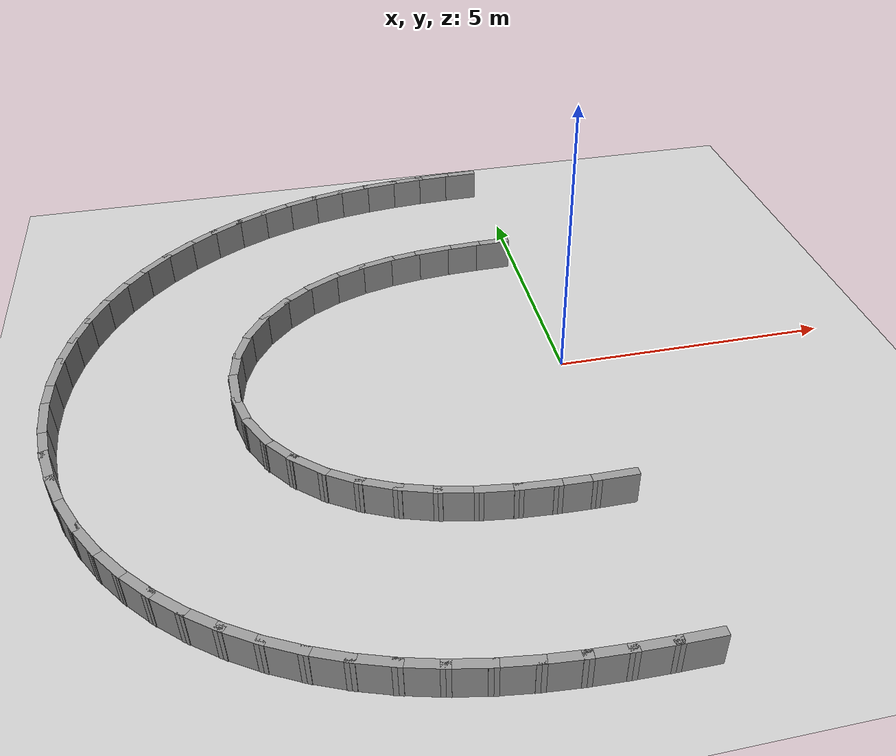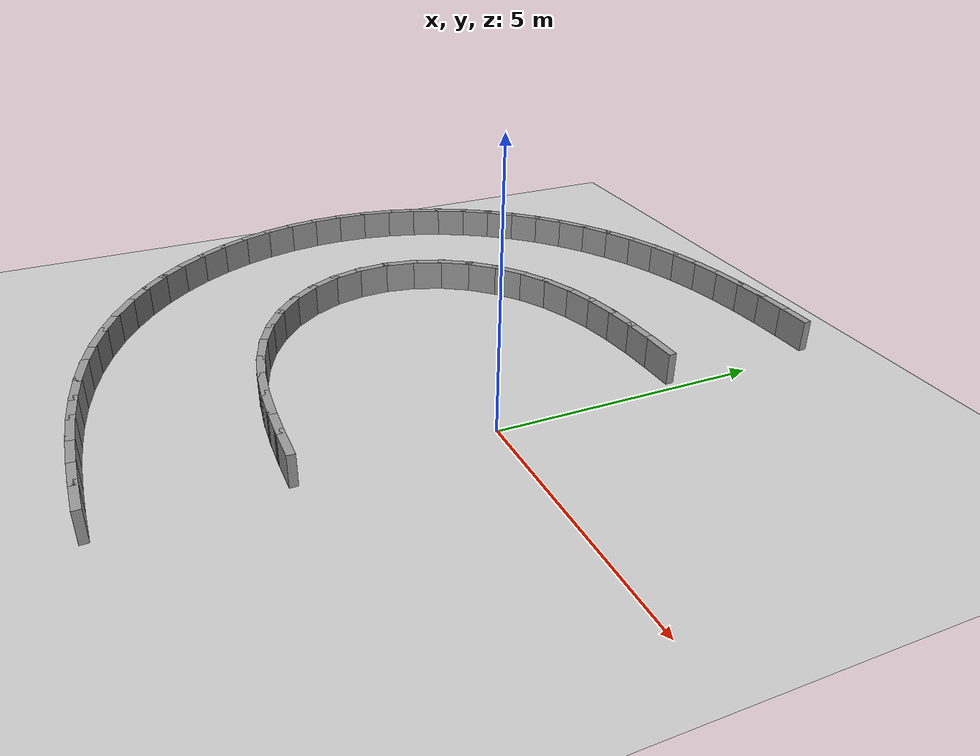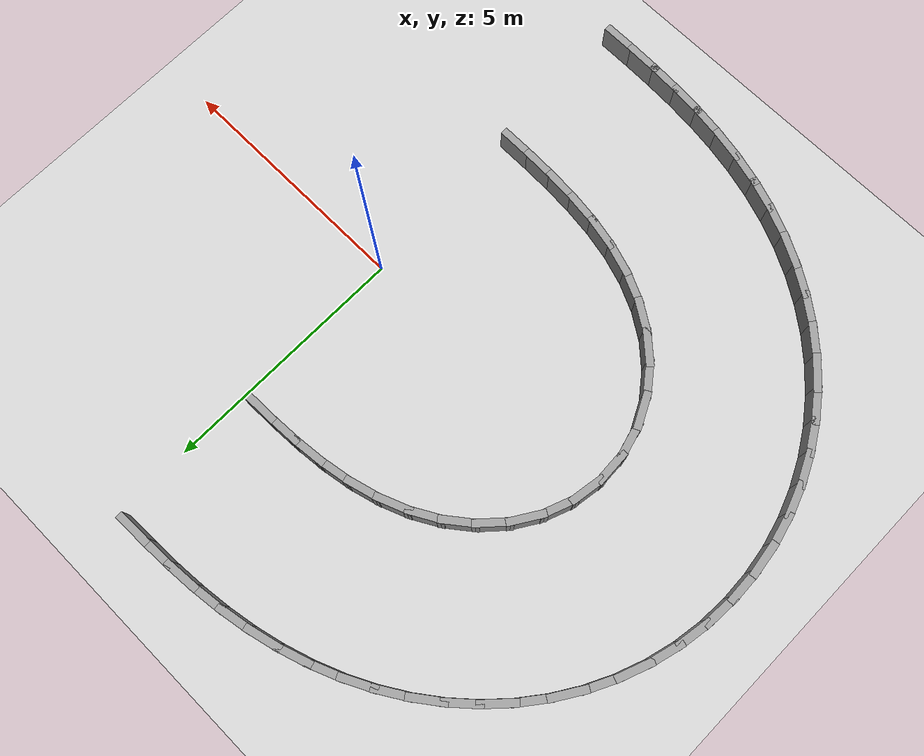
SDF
<sdf version="1.7">
 <world name="default">
  <model name="ground_plane">
   <static>1</static>
   <link name="link">
    <collision name="collision">
     <geometry><plane><normal>0 0 1</normal><size>100 100</size></plane></geometry>
     <surface><friction><ode><mu>100</mu><mu2>50</mu2></ode></friction></surface>
    </collision>
    <visual name="visual">
     <cast_shadows>0</cast_shadows>
     <geometry><plane><normal>0 0 1</normal><size>100 100</size></plane></geometry>
     <material>
      <script><uri>file://media/materials/scripts/gazebo.material</uri><name>Gazebo/Grey</name></script>
     </material>
    </visual>
   </link>
  </model>
  <model name="rand_lobed_07">
   <link name="Wall_13">
    <collision name="Wall_13_Collision">
     <geometry><box><size>0.7500 0.1500 0.6000</size></box></geometry>
     <pose>0 0 0.3000 0 -0 0</pose>
    </collision>
    <visual name="Wall_13_Visual">
     <pose>0 0 0.3000 0 -0 0</pose>
     <geometry><box><size>0.7500 0.1500 0.6000</size></box></geometry>
     <material>
      <script><uri>file://media/materials/scripts/gazebo.material</uri><name>Gazebo/Grey</name></script>
      <ambient>1 1 1 1</ambient>
     </material>
    </visual>
    <pose>-0.5262 3.4776 0 0 -0 -3.12235</pose>
   </link>
   <link name="Wall_14">
    <collision name="Wall_14_Collision">
     <geometry><box><size>0.7500 0.1500 0.6000</size></box></geometry>
     <pose>0 0 0.3000 0 -0 0</pose>
    </collision>
    <visual name="Wall_14_Visual">
     <pose>0 0 0.3000 0 -0 0</pose>
     <geometry><box><size>0.7500 0.1500 0.6000</size></box></geometry>
     <material>
      <script><uri>file://media/materials/scripts/gazebo.material</uri><name>Gazebo/Grey</name></script>
      <ambient>1 1 1 1</ambient>
     </material>
    </visual>
    <pose>-1.1257 3.4567 0 0 -0 -3.09110</pose>
   </link>
   <link name="Wall_15">
    <collision name="Wall_15_Collision">
     <geometry><box><size>0.7499 0.1500 0.6000</size></box></geometry>
     <pose>0 0 0.3000 0 -0 0</pose>
    </collision>
    <visual name="Wall_15_Visual">
     <pose>0 0 0.3000 0 -0 0</pose>
     <geometry><box><size>0.7499 0.1500 0.6000</size></box></geometry>
     <material>
      <script><uri>file://media/materials/scripts/gazebo.material</uri><name>Gazebo/Grey</name></script>
      <ambient>1 1 1 1</ambient>
     </material>
    </visual>
    <pose>-1.7238 3.4117 0 0 -0 -3.04209</pose>
   </link>
   <link name="Wall_16">
    <collision name="Wall_16_Collision">
     <geometry><box><size>0.7498 0.1500 0.6000</size></box></geometry>
     <pose>0 0 0.3000 0 -0 0</pose>
    </collision>
    <visual name="Wall_16_Visual">
     <pose>0 0 0.3000 0 -0 0</pose>
     <geometry><box><size>0.7498 0.1500 0.6000</size></box></geometry>
     <material>
      <script><uri>file://media/materials/scripts/gazebo.material</uri><name>Gazebo/Grey</name></script>
      <ambient>1 1 1 1</ambient>
     </material>
    </visual>
    <pose>-2.3178 3.3311 0 0 -0 -2.97131</pose>
   </link>
   <link name="Wall_17">
    <collision name="Wall_17_Collision">
     <geometry><box><size>0.7497 0.1500 0.6000</size></box></geometry>
     <pose>0 0 0.3000 0 -0 0</pose>
    </collision>
    <visual name="Wall_17_Visual">
     <pose>0 0 0.3000 0 -0 0</pose>
     <geometry><box><size>0.7497 0.1500 0.6000</size></box></geometry>
     <material>
      <script><uri>file://media/materials/scripts/gazebo.material</uri><name>Gazebo/Grey</name></script>
      <ambient>1 1 1 1</ambient>
     </material>
    </visual>
    <pose>-2.9029 3.2023 0 0 -0 -2.87835</pose>
   </link>
   <link name="Wall_18">
    <collision name="Wall_18_Collision">
     <geometry><box><size>0.7496 0.1500 0.6000</size></box></geometry>
     <pose>0 0 0.3000 0 -0 0</pose>
    </collision>
    <visual name="Wall_18_Visual">
     <pose>0 0 0.3000 0 -0 0</pose>
     <geometry><box><size>0.7496 0.1500 0.6000</size></box></geometry>
     <material>
      <script><uri>file://media/materials/scripts/gazebo.material</uri><name>Gazebo/Grey</name></script>
      <ambient>1 1 1 1</ambient>
     </material>
    </visual>
    <pose>-3.4712 3.0140 0 0 -0 -2.76487</pose>
   </link>
   <link name="Wall_19">
    <collision name="Wall_19_Collision">
     <geometry><box><size>0.7495 0.1500 0.6000</size></box></geometry>
     <pose>0 0 0.3000 0 -0 0</pose>
    </collision>
    <visual name="Wall_19_Visual">
     <pose>0 0 0.3000 0 -0 0</pose>
     <geometry><box><size>0.7495 0.1500 0.6000</size></box></geometry>
     <material>
      <script><uri>file://media/materials/scripts/gazebo.material</uri><name>Gazebo/Grey</name></script>
      <ambient>1 1 1 1</ambient>
     </material>
    </visual>
    <pose>-4.0118 2.7576 0 0 -0 -2.63266</pose>
   </link>
   <link name="Wall_20">
    <collision name="Wall_20_Collision">
     <geometry><box><size>0.7494 0.1500 0.6000</size></box></geometry>
     <pose>0 0 0.3000 0 -0 0</pose>
    </collision>
    <visual name="Wall_20_Visual">
     <pose>0 0 0.3000 0 -0 0</pose>
     <geometry><box><size>0.7494 0.1500 0.6000</size></box></geometry>
     <material>
      <script><uri>file://media/materials/scripts/gazebo.material</uri><name>Gazebo/Grey</name></script>
      <ambient>1 1 1 1</ambient>
     </material>
    </visual>
    <pose>-4.5106 2.4281 0 0 -0 -2.48297</pose>
   </link>
   <link name="Wall_21">
    <collision name="Wall_21_Collision">
     <geometry><box><size>0.7492 0.1500 0.6000</size></box></geometry>
     <pose>0 0 0.3000 0 -0 0</pose>
    </collision>
    <visual name="Wall_21_Visual">
     <pose>0 0 0.3000 0 -0 0</pose>
     <geometry><box><size>0.7492 0.1500 0.6000</size></box></geometry>
     <material>
      <script><uri>file://media/materials/scripts/gazebo.material</uri><name>Gazebo/Grey</name></script>
      <ambient>1 1 1 1</ambient>
     </material>
    </visual>
    <pose>-4.9509 2.0246 0 0 -0 -2.31660</pose>
   </link>
   <link name="Wall_22">
    <collision name="Wall_22_Collision">
     <geometry><box><size>0.7491 0.1500 0.6000</size></box></geometry>
     <pose>0 0 0.3000 0 -0 0</pose>
    </collision>
    <visual name="Wall_22_Visual">
     <pose>0 0 0.3000 0 -0 0</pose>
     <geometry><box><size>0.7491 0.1500 0.6000</size></box></geometry>
     <material>
      <script><uri>file://media/materials/scripts/gazebo.material</uri><name>Gazebo/Grey</name></script>
      <ambient>1 1 1 1</ambient>
     </material>
    </visual>
    <pose>-5.3141 1.5513 0 0 -0 -2.13413</pose>
   </link>
   <link name="Wall_23">
    <collision name="Wall_23_Collision">
     <geometry><box><size>0.7490 0.1500 0.6000</size></box></geometry>
     <pose>0 0 0.3000 0 -0 0</pose>
    </collision>
    <visual name="Wall_23_Visual">
     <pose>0 0 0.3000 0 -0 0</pose>
     <geometry><box><size>0.7490 0.1500 0.6000</size></box></geometry>
     <material>
      <script><uri>file://media/materials/scripts/gazebo.material</uri><name>Gazebo/Grey</name></script>
      <ambient>1 1 1 1</ambient>
     </material>
    </visual>
    <pose>-5.5814 1.0184 0 0 -0 -1.93731</pose>
   </link>
   <link name="Wall_24">
    <collision name="Wall_24_Collision">
     <geometry><box><size>0.7489 0.1500 0.6000</size></box></geometry>
     <pose>0 0 0.3000 0 -0 0</pose>
    </collision>
    <visual name="Wall_24_Visual">
     <pose>0 0 0.3000 0 -0 0</pose>
     <geometry><box><size>0.7489 0.1500 0.6000</size></box></geometry>
     <material>
      <script><uri>file://media/materials/scripts/gazebo.material</uri><name>Gazebo/Grey</name></script>
      <ambient>1 1 1 1</ambient>
     </material>
    </visual>
    <pose>-5.7361 0.4432 0 0 -0 -1.72955</pose>
   </link>
   <link name="Wall_25">
    <collision name="Wall_25_Collision">
     <geometry><box><size>0.7489 0.1500 0.6000</size></box></geometry>
     <pose>0 0 0.3000 0 -0 0</pose>
    </collision>
    <visual name="Wall_25_Visual">
     <pose>0 0 0.3000 0 -0 0</pose>
     <geometry><box><size>0.7489 0.1500 0.6000</size></box></geometry>
     <material>
      <script><uri>file://media/materials/scripts/gazebo.material</uri><name>Gazebo/Grey</name></script>
      <ambient>1 1 1 1</ambient>
     </material>
    </visual>
    <pose>-5.7672 -0.1515 0 0 -0 -1.51658</pose>
   </link>
   <link name="Wall_26">
    <collision name="Wall_26_Collision">
     <geometry><box><size>0.7489 0.1500 0.6000</size></box></geometry>
     <pose>0 0 0.3000 0 -0 0</pose>
    </collision>
    <visual name="Wall_26_Visual">
     <pose>0 0 0.3000 0 -0 0</pose>
     <geometry><box><size>0.7489 0.1500 0.6000</size></box></geometry>
     <material>
      <script><uri>file://media/materials/scripts/gazebo.material</uri><name>Gazebo/Grey</name></script>
      <ambient>1 1 1 1</ambient>
     </material>
    </visual>
    <pose>-5.6724 -0.7395 0 0 -0 -1.30540</pose>
   </link>
   <link name="Wall_27">
    <collision name="Wall_27_Collision">
     <geometry><box><size>0.7490 0.1500 0.6000</size></box></geometry>
     <pose>0 0 0.3000 0 -0 0</pose>
    </collision>
    <visual name="Wall_27_Visual">
     <pose>0 0 0.3000 0 -0 0</pose>
     <geometry><box><size>0.7490 0.1500 0.6000</size></box></geometry>
     <material>
      <script><uri>file://media/materials/scripts/gazebo.material</uri><name>Gazebo/Grey</name></script>
      <ambient>1 1 1 1</ambient>
     </material>
    </visual>
    <pose>-5.4587 -1.2957 0 0 -0 -1.10263</pose>
   </link>
   <link name="Wall_28">
    <collision name="Wall_28_Collision">
     <geometry><box><size>0.7492 0.1500 0.6000</size></box></geometry>
     <pose>0 0 0.3000 0 -0 0</pose>
    </collision>
    <visual name="Wall_28_Visual">
     <pose>0 0 0.3000 0 -0 0</pose>
     <geometry><box><size>0.7492 0.1500 0.6000</size></box></geometry>
     <material>
      <script><uri>file://media/materials/scripts/gazebo.material</uri><name>Gazebo/Grey</name></script>
      <ambient>1 1 1 1</ambient>
     </material>
    </visual>
    <pose>-5.1404 -1.8001 0 0 -0 -0.91282</pose>
   </link>
   <link name="Wall_29">
    <collision name="Wall_29_Collision">
     <geometry><box><size>0.7493 0.1500 0.6000</size></box></geometry>
     <pose>0 0 0.3000 0 -0 0</pose>
    </collision>
    <visual name="Wall_29_Visual">
     <pose>0 0 0.3000 0 -0 0</pose>
     <geometry><box><size>0.7493 0.1500 0.6000</size></box></geometry>
     <material>
      <script><uri>file://media/materials/scripts/gazebo.material</uri><name>Gazebo/Grey</name></script>
      <ambient>1 1 1 1</ambient>
     </material>
    </visual>
    <pose>-4.7356 -2.2388 0 0 -0 -0.73840</pose>
   </link>
   <link name="Wall_30">
    <collision name="Wall_30_Collision">
     <geometry><box><size>0.7494 0.1500 0.6000</size></box></geometry>
     <pose>0 0 0.3000 0 -0 0</pose>
    </collision>
    <visual name="Wall_30_Visual">
     <pose>0 0 0.3000 0 -0 0</pose>
     <geometry><box><size>0.7494 0.1500 0.6000</size></box></geometry>
     <material>
      <script><uri>file://media/materials/scripts/gazebo.material</uri><name>Gazebo/Grey</name></script>
      <ambient>1 1 1 1</ambient>
     </material>
    </visual>
    <pose>-4.2633 -2.6049 0 0 -0 -0.58046</pose>
   </link>
   <link name="Wall_31">
    <collision name="Wall_31_Collision">
     <geometry><box><size>0.7496 0.1500 0.6000</size></box></geometry>
     <pose>0 0 0.3000 0 -0 0</pose>
    </collision>
    <visual name="Wall_31_Visual">
     <pose>0 0 0.3000 0 -0 0</pose>
     <geometry><box><size>0.7496 0.1500 0.6000</size></box></geometry>
     <material>
      <script><uri>file://media/materials/scripts/gazebo.material</uri><name>Gazebo/Grey</name></script>
      <ambient>1 1 1 1</ambient>
     </material>
    </visual>
    <pose>-3.7414 -2.8968 0 0 -0 -0.43950</pose>
   </link>
   <link name="Wall_32">
    <collision name="Wall_32_Collision">
     <geometry><box><size>0.7497 0.1500 0.6000</size></box></geometry>
     <pose>0 0 0.3000 0 -0 0</pose>
    </collision>
    <visual name="Wall_32_Visual">
     <pose>0 0 0.3000 0 -0 0</pose>
     <geometry><box><size>0.7497 0.1500 0.6000</size></box></geometry>
     <material>
      <script><uri>file://media/materials/scripts/gazebo.material</uri><name>Gazebo/Grey</name></script>
      <ambient>1 1 1 1</ambient>
     </material>
    </visual>
    <pose>-3.1852 -3.1177 0 0 -0 -0.31660</pose>
   </link>
   <link name="Wall_33">
    <collision name="Wall_33_Collision">
     <geometry><box><size>0.7498 0.1500 0.6000</size></box></geometry>
     <pose>0 0 0.3000 0 -0 0</pose>
    </collision>
    <visual name="Wall_33_Visual">
     <pose>0 0 0.3000 0 -0 0</pose>
     <geometry><box><size>0.7498 0.1500 0.6000</size></box></geometry>
     <material>
      <script><uri>file://media/materials/scripts/gazebo.material</uri><name>Gazebo/Grey</name></script>
      <ambient>1 1 1 1</ambient>
     </material>
    </visual>
    <pose>-2.6071 -3.2745 0 0 -0 -0.21333</pose>
   </link>
   <link name="Wall_34">
    <collision name="Wall_34_Collision">
     <geometry><box><size>0.7499 0.1500 0.6000</size></box></geometry>
     <pose>0 0 0.3000 0 -0 0</pose>
    </collision>
    <visual name="Wall_34_Visual">
     <pose>0 0 0.3000 0 -0 0</pose>
     <geometry><box><size>0.7499 0.1500 0.6000</size></box></geometry>
     <material>
      <script><uri>file://media/materials/scripts/gazebo.material</uri><name>Gazebo/Grey</name></script>
      <ambient>1 1 1 1</ambient>
     </material>
    </visual>
    <pose>-2.0167 -3.3773 0 0 -0 -0.13149</pose>
   </link>
   <link name="Wall_35">
    <collision name="Wall_35_Collision">
     <geometry><box><size>0.7499 0.1500 0.6000</size></box></geometry>
     <pose>0 0 0.3000 0 -0 0</pose>
    </collision>
    <visual name="Wall_35_Visual">
     <pose>0 0 0.3000 0 -0 0</pose>
     <geometry><box><size>0.7499 0.1500 0.6000</size></box></geometry>
     <material>
      <script><uri>file://media/materials/scripts/gazebo.material</uri><name>Gazebo/Grey</name></script>
      <ambient>1 1 1 1</ambient>
     </material>
    </visual>
    <pose>-1.4202 -3.4383 0 0 -0 -0.07203</pose>
   </link>
   <link name="Wall_36">
    <collision name="Wall_36_Collision">
     <geometry><box><size>0.7500 0.1500 0.6000</size></box></geometry>
     <pose>0 0 0.3000 0 -0 0</pose>
    </collision>
    <visual name="Wall_36_Visual">
     <pose>0 0 0.3000 0 -0 0</pose>
     <geometry><box><size>0.7500 0.1500 0.6000</size></box></geometry>
     <material>
      <script><uri>file://media/materials/scripts/gazebo.material</uri><name>Gazebo/Grey</name></script>
      <ambient>1 1 1 1</ambient>
     </material>
    </visual>
    <pose>-0.8211 -3.4697 0 0 -0 -0.03282</pose>
   </link>
   <link name="Wall_37">
    <collision name="Wall_37_Collision">
     <geometry><box><size>0.7500 0.1500 0.6000</size></box></geometry>
     <pose>0 0 0.3000 0 -0 0</pose>
    </collision>
    <visual name="Wall_37_Visual">
     <pose>0 0 0.3000 0 -0 0</pose>
     <geometry><box><size>0.7500 0.1500 0.6000</size></box></geometry>
     <material>
      <script><uri>file://media/materials/scripts/gazebo.material</uri><name>Gazebo/Grey</name></script>
      <ambient>1 1 1 1</ambient>
     </material>
    </visual>
    <pose>-0.2213 -3.4818 0 0 -0 -0.00765</pose>
   </link>
   <link name="Wall_71">
    <collision name="Wall_71_Collision">
     <geometry><box><size>0.7500 0.1500 0.6000</size></box></geometry>
     <pose>0 0 0.3000 0 -0 0</pose>
    </collision>
    <visual name="Wall_71_Visual">
     <pose>0 0 0.3000 0 -0 0</pose>
     <geometry><box><size>0.7500 0.1500 0.6000</size></box></geometry>
     <material>
      <script><uri>file://media/materials/scripts/gazebo.material</uri><name>Gazebo/Grey</name></script>
      <ambient>1 1 1 1</ambient>
     </material>
    </visual>
    <pose>-0.5635 6.5097 0 0 -0 -3.12319</pose>
   </link>
   <link name="Wall_72">
    <collision name="Wall_72_Collision">
     <geometry><box><size>0.7500 0.1500 0.6000</size></box></geometry>
     <pose>0 0 0.3000 0 -0 0</pose>
    </collision>
    <visual name="Wall_72_Visual">
     <pose>0 0 0.3000 0 -0 0</pose>
     <geometry><box><size>0.7500 0.1500 0.6000</size></box></geometry>
     <material>
      <script><uri>file://media/materials/scripts/gazebo.material</uri><name>Gazebo/Grey</name></script>
      <ambient>1 1 1 1</ambient>
     </material>
    </visual>
    <pose>-1.1631 6.4909 0 0 -0 -3.09737</pose>
   </link>
   <link name="Wall_73">
    <collision name="Wall_73_Collision">
     <geometry><box><size>0.7500 0.1500 0.6000</size></box></geometry>
     <pose>0 0 0.3000 0 -0 0</pose>
    </collision>
    <visual name="Wall_73_Visual">
     <pose>0 0 0.3000 0 -0 0</pose>
     <geometry><box><size>0.7500 0.1500 0.6000</size></box></geometry>
     <material>
      <script><uri>file://media/materials/scripts/gazebo.material</uri><name>Gazebo/Grey</name></script>
      <ambient>1 1 1 1</ambient>
     </material>
    </visual>
    <pose>-1.7618 6.4537 0 0 -0 -3.06155</pose>
   </link>
   <link name="Wall_74">
    <collision name="Wall_74_Collision">
     <geometry><box><size>0.7499 0.1500 0.6000</size></box></geometry>
     <pose>0 0 0.3000 0 -0 0</pose>
    </collision>
    <visual name="Wall_74_Visual">
     <pose>0 0 0.3000 0 -0 0</pose>
     <geometry><box><size>0.7499 0.1500 0.6000</size></box></geometry>
     <material>
      <script><uri>file://media/materials/scripts/gazebo.material</uri><name>Gazebo/Grey</name></script>
      <ambient>1 1 1 1</ambient>
     </material>
    </visual>
    <pose>-2.3584 6.3919 0 0 -0 -3.01525</pose>
   </link>
   <link name="Wall_75">
    <collision name="Wall_75_Collision">
     <geometry><box><size>0.7499 0.1500 0.6000</size></box></geometry>
     <pose>0 0 0.3000 0 -0 0</pose>
    </collision>
    <visual name="Wall_75_Visual">
     <pose>0 0 0.3000 0 -0 0</pose>
     <geometry><box><size>0.7499 0.1500 0.6000</size></box></geometry>
     <material>
      <script><uri>file://media/materials/scripts/gazebo.material</uri><name>Gazebo/Grey</name></script>
      <ambient>1 1 1 1</ambient>
     </material>
    </visual>
    <pose>-2.9510 6.2998 0 0 -0 -2.95978</pose>
   </link>
   <link name="Wall_76">
    <collision name="Wall_76_Collision">
     <geometry><box><size>0.7499 0.1500 0.6000</size></box></geometry>
     <pose>0 0 0.3000 0 -0 0</pose>
    </collision>
    <visual name="Wall_76_Visual">
     <pose>0 0 0.3000 0 -0 0</pose>
     <geometry><box><size>0.7499 0.1500 0.6000</size></box></geometry>
     <material>
      <script><uri>file://media/materials/scripts/gazebo.material</uri><name>Gazebo/Grey</name></script>
      <ambient>1 1 1 1</ambient>
     </material>
    </visual>
    <pose>-3.5370 6.1729 0 0 -0 -2.89670</pose>
   </link>
   <link name="Wall_77">
    <collision name="Wall_77_Collision">
     <geometry><box><size>0.7499 0.1500 0.6000</size></box></geometry>
     <pose>0 0 0.3000 0 -0 0</pose>
    </collision>
    <visual name="Wall_77_Visual">
     <pose>0 0 0.3000 0 -0 0</pose>
     <geometry><box><size>0.7499 0.1500 0.6000</size></box></geometry>
     <material>
      <script><uri>file://media/materials/scripts/gazebo.material</uri><name>Gazebo/Grey</name></script>
      <ambient>1 1 1 1</ambient>
     </material>
    </visual>
    <pose>-4.1132 6.0075 0 0 -0 -2.82742</pose>
   </link>
   <link name="Wall_78">
    <collision name="Wall_78_Collision">
     <geometry><box><size>0.7499 0.1500 0.6000</size></box></geometry>
     <pose>0 0 0.3000 0 -0 0</pose>
    </collision>
    <visual name="Wall_78_Visual">
     <pose>0 0 0.3000 0 -0 0</pose>
     <geometry><box><size>0.7499 0.1500 0.6000</size></box></geometry>
     <material>
      <script><uri>file://media/materials/scripts/gazebo.material</uri><name>Gazebo/Grey</name></script>
      <ambient>1 1 1 1</ambient>
     </material>
    </visual>
    <pose>-4.6761 5.8012 0 0 -0 -2.75311</pose>
   </link>
   <link name="Wall_79">
    <collision name="Wall_79_Collision">
     <geometry><box><size>0.7498 0.1500 0.6000</size></box></geometry>
     <pose>0 0 0.3000 0 -0 0</pose>
    </collision>
    <visual name="Wall_79_Visual">
     <pose>0 0 0.3000 0 -0 0</pose>
     <geometry><box><size>0.7498 0.1500 0.6000</size></box></geometry>
     <material>
      <script><uri>file://media/materials/scripts/gazebo.material</uri><name>Gazebo/Grey</name></script>
      <ambient>1 1 1 1</ambient>
     </material>
    </visual>
    <pose>-5.2214 5.5525 0 0 -0 -2.67445</pose>
   </link>
   <link name="Wall_80">
    <collision name="Wall_80_Collision">
     <geometry><box><size>0.7498 0.1500 0.6000</size></box></geometry>
     <pose>0 0 0.3000 0 -0 0</pose>
    </collision>
    <visual name="Wall_80_Visual">
     <pose>0 0 0.3000 0 -0 0</pose>
     <geometry><box><size>0.7498 0.1500 0.6000</size></box></geometry>
     <material>
      <script><uri>file://media/materials/scripts/gazebo.material</uri><name>Gazebo/Grey</name></script>
      <ambient>1 1 1 1</ambient>
     </material>
    </visual>
    <pose>-5.7450 5.2608 0 0 -0 -2.59213</pose>
   </link>
   <link name="Wall_81">
    <collision name="Wall_81_Collision">
     <geometry><box><size>0.7498 0.1500 0.6000</size></box></geometry>
     <pose>0 0 0.3000 0 -0 0</pose>
    </collision>
    <visual name="Wall_81_Visual">
     <pose>0 0 0.3000 0 -0 0</pose>
     <geometry><box><size>0.7498 0.1500 0.6000</size></box></geometry>
     <material>
      <script><uri>file://media/materials/scripts/gazebo.material</uri><name>Gazebo/Grey</name></script>
      <ambient>1 1 1 1</ambient>
     </material>
    </visual>
    <pose>-6.2422 4.9263 0 0 -0 -2.50653</pose>
   </link>
   <link name="Wall_82">
    <collision name="Wall_82_Collision">
     <geometry><box><size>0.7498 0.1500 0.6000</size></box></geometry>
     <pose>0 0 0.3000 0 -0 0</pose>
    </collision>
    <visual name="Wall_82_Visual">
     <pose>0 0 0.3000 0 -0 0</pose>
     <geometry><box><size>0.7498 0.1500 0.6000</size></box></geometry>
     <material>
      <script><uri>file://media/materials/scripts/gazebo.material</uri><name>Gazebo/Grey</name></script>
      <ambient>1 1 1 1</ambient>
     </material>
    </visual>
    <pose>-6.7084 4.5498 0 0 -0 -2.41798</pose>
   </link>
   <link name="Wall_83">
    <collision name="Wall_83_Collision">
     <geometry><box><size>0.7498 0.1500 0.6000</size></box></geometry>
     <pose>0 0 0.3000 0 -0 0</pose>
    </collision>
    <visual name="Wall_83_Visual">
     <pose>0 0 0.3000 0 -0 0</pose>
     <geometry><box><size>0.7498 0.1500 0.6000</size></box></geometry>
     <material>
      <script><uri>file://media/materials/scripts/gazebo.material</uri><name>Gazebo/Grey</name></script>
      <ambient>1 1 1 1</ambient>
     </material>
    </visual>
    <pose>-7.1388 4.1330 0 0 -0 -2.32675</pose>
   </link>
   <link name="Wall_84">
    <collision name="Wall_84_Collision">
     <geometry><box><size>0.7498 0.1500 0.6000</size></box></geometry>
     <pose>0 0 0.3000 0 -0 0</pose>
    </collision>
    <visual name="Wall_84_Visual">
     <pose>0 0 0.3000 0 -0 0</pose>
     <geometry><box><size>0.7498 0.1500 0.6000</size></box></geometry>
     <material>
      <script><uri>file://media/materials/scripts/gazebo.material</uri><name>Gazebo/Grey</name></script>
      <ambient>1 1 1 1</ambient>
     </material>
    </visual>
    <pose>-7.5290 3.6783 0 0 -0 -2.23302</pose>
   </link>
   <link name="Wall_85">
    <collision name="Wall_85_Collision">
     <geometry><box><size>0.7498 0.1500 0.6000</size></box></geometry>
     <pose>0 0 0.3000 0 -0 0</pose>
    </collision>
    <visual name="Wall_85_Visual">
     <pose>0 0 0.3000 0 -0 0</pose>
     <geometry><box><size>0.7498 0.1500 0.6000</size></box></geometry>
     <material>
      <script><uri>file://media/materials/scripts/gazebo.material</uri><name>Gazebo/Grey</name></script>
      <ambient>1 1 1 1</ambient>
     </material>
    </visual>
    <pose>-7.8743 3.1888 0 0 -0 -2.13720</pose>
   </link>
   <link name="Wall_86">
    <collision name="Wall_86_Collision">
     <geometry><box><size>0.7498 0.1500 0.6000</size></box></geometry>
     <pose>0 0 0.3000 0 -0 0</pose>
    </collision>
    <visual name="Wall_86_Visual">
     <pose>0 0 0.3000 0 -0 0</pose>
     <geometry><box><size>0.7498 0.1500 0.6000</size></box></geometry>
     <material>
      <script><uri>file://media/materials/scripts/gazebo.material</uri><name>Gazebo/Grey</name></script>
      <ambient>1 1 1 1</ambient>
     </material>
    </visual>
    <pose>-8.1706 2.6682 0 0 -0 -2.03935</pose>
   </link>
   <link name="Wall_87">
    <collision name="Wall_87_Collision">
     <geometry><box><size>0.7497 0.1500 0.6000</size></box></geometry>
     <pose>0 0 0.3000 0 -0 0</pose>
    </collision>
    <visual name="Wall_87_Visual">
     <pose>0 0 0.3000 0 -0 0</pose>
     <geometry><box><size>0.7497 0.1500 0.6000</size></box></geometry>
     <material>
      <script><uri>file://media/materials/scripts/gazebo.material</uri><name>Gazebo/Grey</name></script>
      <ambient>1 1 1 1</ambient>
     </material>
    </visual>
    <pose>-8.4142 2.1209 0 0 -0 -1.93982</pose>
   </link>
   <link name="Wall_88">
    <collision name="Wall_88_Collision">
     <geometry><box><size>0.7497 0.1500 0.6000</size></box></geometry>
     <pose>0 0 0.3000 0 -0 0</pose>
    </collision>
    <visual name="Wall_88_Visual">
     <pose>0 0 0.3000 0 -0 0</pose>
     <geometry><box><size>0.7497 0.1500 0.6000</size></box></geometry>
     <material>
      <script><uri>file://media/materials/scripts/gazebo.material</uri><name>Gazebo/Grey</name></script>
      <ambient>1 1 1 1</ambient>
     </material>
    </visual>
    <pose>-8.6018 1.5521 0 0 -0 -1.83899</pose>
   </link>
   <link name="Wall_89">
    <collision name="Wall_89_Collision">
     <geometry><box><size>0.7497 0.1500 0.6000</size></box></geometry>
     <pose>0 0 0.3000 0 -0 0</pose>
    </collision>
    <visual name="Wall_89_Visual">
     <pose>0 0 0.3000 0 -0 0</pose>
     <geometry><box><size>0.7497 0.1500 0.6000</size></box></geometry>
     <material>
      <script><uri>file://media/materials/scripts/gazebo.material</uri><name>Gazebo/Grey</name></script>
      <ambient>1 1 1 1</ambient>
     </material>
    </visual>
    <pose>-8.7309 0.9672 0 0 -0 -1.73714</pose>
   </link>
   <link name="Wall_90">
    <collision name="Wall_90_Collision">
     <geometry><box><size>0.7497 0.1500 0.6000</size></box></geometry>
     <pose>0 0 0.3000 0 -0 0</pose>
    </collision>
    <visual name="Wall_90_Visual">
     <pose>0 0 0.3000 0 -0 0</pose>
     <geometry><box><size>0.7497 0.1500 0.6000</size></box></geometry>
     <material>
      <script><uri>file://media/materials/scripts/gazebo.material</uri><name>Gazebo/Grey</name></script>
      <ambient>1 1 1 1</ambient>
     </material>
    </visual>
    <pose>-8.7997 0.3722 0 0 -0 -1.63466</pose>
   </link>
   <link name="Wall_91">
    <collision name="Wall_91_Collision">
     <geometry><box><size>0.7497 0.1500 0.6000</size></box></geometry>
     <pose>0 0 0.3000 0 -0 0</pose>
    </collision>
    <visual name="Wall_91_Visual">
     <pose>0 0 0.3000 0 -0 0</pose>
     <geometry><box><size>0.7497 0.1500 0.6000</size></box></geometry>
     <material>
      <script><uri>file://media/materials/scripts/gazebo.material</uri><name>Gazebo/Grey</name></script>
      <ambient>1 1 1 1</ambient>
     </material>
    </visual>
    <pose>-8.8072 -0.2267 0 0 -0 -1.53192</pose>
   </link>
   <link name="Wall_92">
    <collision name="Wall_92_Collision">
     <geometry><box><size>0.7497 0.1500 0.6000</size></box></geometry>
     <pose>0 0 0.3000 0 -0 0</pose>
    </collision>
    <visual name="Wall_92_Visual">
     <pose>0 0 0.3000 0 -0 0</pose>
     <geometry><box><size>0.7497 0.1500 0.6000</size></box></geometry>
     <material>
      <script><uri>file://media/materials/scripts/gazebo.material</uri><name>Gazebo/Grey</name></script>
      <ambient>1 1 1 1</ambient>
     </material>
    </visual>
    <pose>-8.7533 -0.8232 0 0 -0 -1.42933</pose>
   </link>
   <link name="Wall_93">
    <collision name="Wall_93_Collision">
     <geometry><box><size>0.7497 0.1500 0.6000</size></box></geometry>
     <pose>0 0 0.3000 0 -0 0</pose>
    </collision>
    <visual name="Wall_93_Visual">
     <pose>0 0 0.3000 0 -0 0</pose>
     <geometry><box><size>0.7497 0.1500 0.6000</size></box></geometry>
     <material>
      <script><uri>file://media/materials/scripts/gazebo.material</uri><name>Gazebo/Grey</name></script>
      <ambient>1 1 1 1</ambient>
     </material>
    </visual>
    <pose>-8.6387 -1.4111 0 0 -0 -1.32729</pose>
   </link>
   <link name="Wall_94">
    <collision name="Wall_94_Collision">
     <geometry><box><size>0.7497 0.1500 0.6000</size></box></geometry>
     <pose>0 0 0.3000 0 -0 0</pose>
    </collision>
    <visual name="Wall_94_Visual">
     <pose>0 0 0.3000 0 -0 0</pose>
     <geometry><box><size>0.7497 0.1500 0.6000</size></box></geometry>
     <material>
      <script><uri>file://media/materials/scripts/gazebo.material</uri><name>Gazebo/Grey</name></script>
      <ambient>1 1 1 1</ambient>
     </material>
    </visual>
    <pose>-8.4651 -1.9843 0 0 -0 -1.22616</pose>
   </link>
   <link name="Wall_95">
    <collision name="Wall_95_Collision">
     <geometry><box><size>0.7498 0.1500 0.6000</size></box></geometry>
     <pose>0 0 0.3000 0 -0 0</pose>
    </collision>
    <visual name="Wall_95_Visual">
     <pose>0 0 0.3000 0 -0 0</pose>
     <geometry><box><size>0.7498 0.1500 0.6000</size></box></geometry>
     <material>
      <script><uri>file://media/materials/scripts/gazebo.material</uri><name>Gazebo/Grey</name></script>
      <ambient>1 1 1 1</ambient>
     </material>
    </visual>
    <pose>-8.2348 -2.5373 0 0 -0 -1.12632</pose>
   </link>
   <link name="Wall_96">
    <collision name="Wall_96_Collision">
     <geometry><box><size>0.7498 0.1500 0.6000</size></box></geometry>
     <pose>0 0 0.3000 0 -0 0</pose>
    </collision>
    <visual name="Wall_96_Visual">
     <pose>0 0 0.3000 0 -0 0</pose>
     <geometry><box><size>0.7498 0.1500 0.6000</size></box></geometry>
     <material>
      <script><uri>file://media/materials/scripts/gazebo.material</uri><name>Gazebo/Grey</name></script>
      <ambient>1 1 1 1</ambient>
     </material>
    </visual>
    <pose>-7.9510 -3.0649 0 0 -0 -1.02809</pose>
   </link>
   <link name="Wall_97">
    <collision name="Wall_97_Collision">
     <geometry><box><size>0.7498 0.1500 0.6000</size></box></geometry>
     <pose>0 0 0.3000 0 -0 0</pose>
    </collision>
    <visual name="Wall_97_Visual">
     <pose>0 0 0.3000 0 -0 0</pose>
     <geometry><box><size>0.7498 0.1500 0.6000</size></box></geometry>
     <material>
      <script><uri>file://media/materials/scripts/gazebo.material</uri><name>Gazebo/Grey</name></script>
      <ambient>1 1 1 1</ambient>
     </material>
    </visual>
    <pose>-7.6172 -3.5623 0 0 -0 -0.93161</pose>
   </link>
   <link name="Wall_98">
    <collision name="Wall_98_Collision">
     <geometry><box><size>0.7498 0.1500 0.6000</size></box></geometry>
     <pose>0 0 0.3000 0 -0 0</pose>
    </collision>
    <visual name="Wall_98_Visual">
     <pose>0 0 0.3000 0 -0 0</pose>
     <geometry><box><size>0.7498 0.1500 0.6000</size></box></geometry>
     <material>
      <script><uri>file://media/materials/scripts/gazebo.material</uri><name>Gazebo/Grey</name></script>
      <ambient>1 1 1 1</ambient>
     </material>
    </visual>
    <pose>-7.2376 -4.0258 0 0 -0 -0.83744</pose>
   </link>
   <link name="Wall_99">
    <collision name="Wall_99_Collision">
     <geometry><box><size>0.7498 0.1500 0.6000</size></box></geometry>
     <pose>0 0 0.3000 0 -0 0</pose>
    </collision>
    <visual name="Wall_99_Visual">
     <pose>0 0 0.3000 0 -0 0</pose>
     <geometry><box><size>0.7498 0.1500 0.6000</size></box></geometry>
     <material>
      <script><uri>file://media/materials/scripts/gazebo.material</uri><name>Gazebo/Grey</name></script>
      <ambient>1 1 1 1</ambient>
     </material>
    </visual>
    <pose>-6.8165 -4.4521 0 0 -0 -0.74558</pose>
   </link>
   <link name="Wall_100">
    <collision name="Wall_100_Collision">
     <geometry><box><size>0.7498 0.1500 0.6000</size></box></geometry>
     <pose>0 0 0.3000 0 -0 0</pose>
    </collision>
    <visual name="Wall_100_Visual">
     <pose>0 0 0.3000 0 -0 0</pose>
     <geometry><box><size>0.7498 0.1500 0.6000</size></box></geometry>
     <material>
      <script><uri>file://media/materials/scripts/gazebo.material</uri><name>Gazebo/Grey</name></script>
      <ambient>1 1 1 1</ambient>
     </material>
    </visual>
    <pose>-6.3586 -4.8385 0 0 -0 -0.65632</pose>
   </link>
   <link name="Wall_101">
    <collision name="Wall_101_Collision">
     <geometry><box><size>0.7498 0.1500 0.6000</size></box></geometry>
     <pose>0 0 0.3000 0 -0 0</pose>
    </collision>
    <visual name="Wall_101_Visual">
     <pose>0 0 0.3000 0 -0 0</pose>
     <geometry><box><size>0.7498 0.1500 0.6000</size></box></geometry>
     <material>
      <script><uri>file://media/materials/scripts/gazebo.material</uri><name>Gazebo/Grey</name></script>
      <ambient>1 1 1 1</ambient>
     </material>
    </visual>
    <pose>-5.8685 -5.1834 0 0 -0 -0.57003</pose>
   </link>
   <link name="Wall_102">
    <collision name="Wall_102_Collision">
     <geometry><box><size>0.7498 0.1500 0.6000</size></box></geometry>
     <pose>0 0 0.3000 0 -0 0</pose>
    </collision>
    <visual name="Wall_102_Visual">
     <pose>0 0 0.3000 0 -0 0</pose>
     <geometry><box><size>0.7498 0.1500 0.6000</size></box></geometry>
     <material>
      <script><uri>file://media/materials/scripts/gazebo.material</uri><name>Gazebo/Grey</name></script>
      <ambient>1 1 1 1</ambient>
     </material>
    </visual>
    <pose>-5.3510 -5.4855 0 0 -0 -0.48683</pose>
   </link>
   <link name="Wall_103">
    <collision name="Wall_103_Collision">
     <geometry><box><size>0.7498 0.1500 0.6000</size></box></geometry>
     <pose>0 0 0.3000 0 -0 0</pose>
    </collision>
    <visual name="Wall_103_Visual">
     <pose>0 0 0.3000 0 -0 0</pose>
     <geometry><box><size>0.7498 0.1500 0.6000</size></box></geometry>
     <material>
      <script><uri>file://media/materials/scripts/gazebo.material</uri><name>Gazebo/Grey</name></script>
      <ambient>1 1 1 1</ambient>
     </material>
    </visual>
    <pose>-4.8105 -5.7446 0 0 -0 -0.40724</pose>
   </link>
   <link name="Wall_104">
    <collision name="Wall_104_Collision">
     <geometry><box><size>0.7499 0.1500 0.6000</size></box></geometry>
     <pose>0 0 0.3000 0 -0 0</pose>
    </collision>
    <visual name="Wall_104_Visual">
     <pose>0 0 0.3000 0 -0 0</pose>
     <geometry><box><size>0.7499 0.1500 0.6000</size></box></geometry>
     <material>
      <script><uri>file://media/materials/scripts/gazebo.material</uri><name>Gazebo/Grey</name></script>
      <ambient>1 1 1 1</ambient>
     </material>
    </visual>
    <pose>-4.2515 -5.9611 0 0 -0 -0.33183</pose>
   </link>
   <link name="Wall_105">
    <collision name="Wall_105_Collision">
     <geometry><box><size>0.7499 0.1500 0.6000</size></box></geometry>
     <pose>0 0 0.3000 0 -0 0</pose>
    </collision>
    <visual name="Wall_105_Visual">
     <pose>0 0 0.3000 0 -0 0</pose>
     <geometry><box><size>0.7499 0.1500 0.6000</size></box></geometry>
     <material>
      <script><uri>file://media/materials/scripts/gazebo.material</uri><name>Gazebo/Grey</name></script>
      <ambient>1 1 1 1</ambient>
     </material>
    </visual>
    <pose>-3.6782 -6.1363 0 0 -0 -0.26122</pose>
   </link>
   <link name="Wall_106">
    <collision name="Wall_106_Collision">
     <geometry><box><size>0.7499 0.1500 0.6000</size></box></geometry>
     <pose>0 0 0.3000 0 -0 0</pose>
    </collision>
    <visual name="Wall_106_Visual">
     <pose>0 0 0.3000 0 -0 0</pose>
     <geometry><box><size>0.7499 0.1500 0.6000</size></box></geometry>
     <material>
      <script><uri>file://media/materials/scripts/gazebo.material</uri><name>Gazebo/Grey</name></script>
      <ambient>1 1 1 1</ambient>
     </material>
    </visual>
    <pose>-3.0942 -6.2723 0 0 -0 -0.19652</pose>
   </link>
   <link name="Wall_107">
    <collision name="Wall_107_Collision">
     <geometry><box><size>0.7499 0.1500 0.6000</size></box></geometry>
     <pose>0 0 0.3000 0 -0 0</pose>
    </collision>
    <visual name="Wall_107_Visual">
     <pose>0 0 0.3000 0 -0 0</pose>
     <geometry><box><size>0.7499 0.1500 0.6000</size></box></geometry>
     <material>
      <script><uri>file://media/materials/scripts/gazebo.material</uri><name>Gazebo/Grey</name></script>
      <ambient>1 1 1 1</ambient>
     </material>
    </visual>
    <pose>-2.5030 -6.3725 0 0 -0 -0.13904</pose>
   </link>
   <link name="Wall_108">
    <collision name="Wall_108_Collision">
     <geometry><box><size>0.7500 0.1500 0.6000</size></box></geometry>
     <pose>0 0 0.3000 0 -0 0</pose>
    </collision>
    <visual name="Wall_108_Visual">
     <pose>0 0 0.3000 0 -0 0</pose>
     <geometry><box><size>0.7500 0.1500 0.6000</size></box></geometry>
     <material>
      <script><uri>file://media/materials/scripts/gazebo.material</uri><name>Gazebo/Grey</name></script>
      <ambient>1 1 1 1</ambient>
     </material>
    </visual>
    <pose>-1.9072 -6.4411 0 0 -0 -0.09037</pose>
   </link>
   <link name="Wall_109">
    <collision name="Wall_109_Collision">
     <geometry><box><size>0.7500 0.1500 0.6000</size></box></geometry>
     <pose>0 0 0.3000 0 -0 0</pose>
    </collision>
    <visual name="Wall_109_Visual">
     <pose>0 0 0.3000 0 -0 0</pose>
     <geometry><box><size>0.7500 0.1500 0.6000</size></box></geometry>
     <material>
      <script><uri>file://media/materials/scripts/gazebo.material</uri><name>Gazebo/Grey</name></script>
      <ambient>1 1 1 1</ambient>
     </material>
    </visual>
    <pose>-1.3088 -6.4838 0 0 -0 -0.05196</pose>
   </link>
   <link name="Wall_110">
    <collision name="Wall_110_Collision">
     <geometry><box><size>0.7500 0.1500 0.6000</size></box></geometry>
     <pose>0 0 0.3000 0 -0 0</pose>
    </collision>
    <visual name="Wall_110_Visual">
     <pose>0 0 0.3000 0 -0 0</pose>
     <geometry><box><size>0.7500 0.1500 0.6000</size></box></geometry>
     <material>
      <script><uri>file://media/materials/scripts/gazebo.material</uri><name>Gazebo/Grey</name></script>
      <ambient>1 1 1 1</ambient>
     </material>
    </visual>
    <pose>-0.7094 -6.5065 0 0 -0 -0.02390</pose>
   </link>
   <link name="Wall_111">
    <collision name="Wall_111_Collision">
     <geometry><box><size>0.7500 0.1500 0.6000</size></box></geometry>
     <pose>0 0 0.3000 0 -0 0</pose>
    </collision>
    <visual name="Wall_111_Visual">
     <pose>0 0 0.3000 0 -0 0</pose>
     <geometry><box><size>0.7500 0.1500 0.6000</size></box></geometry>
     <material>
      <script><uri>file://media/materials/scripts/gazebo.material</uri><name>Gazebo/Grey</name></script>
      <ambient>1 1 1 1</ambient>
     </material>
    </visual>
    <pose>-0.1094 -6.5147 0 0 -0 -0.00338</pose>
   </link>
   <static>1</static>
  </model>
 </world>
</sdf>
